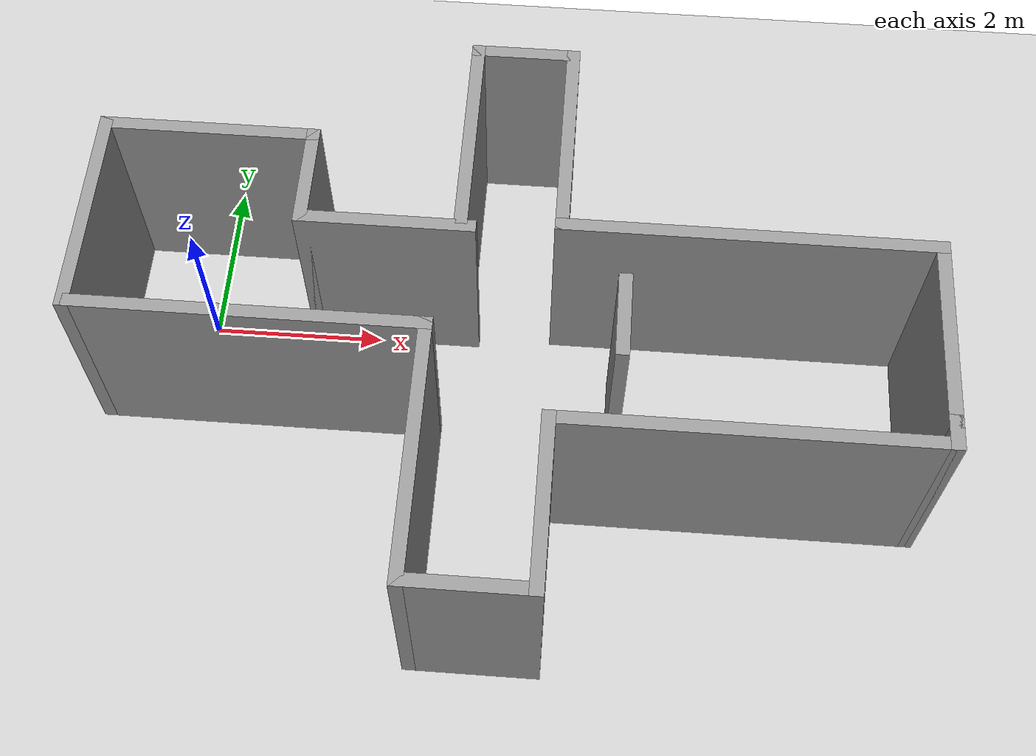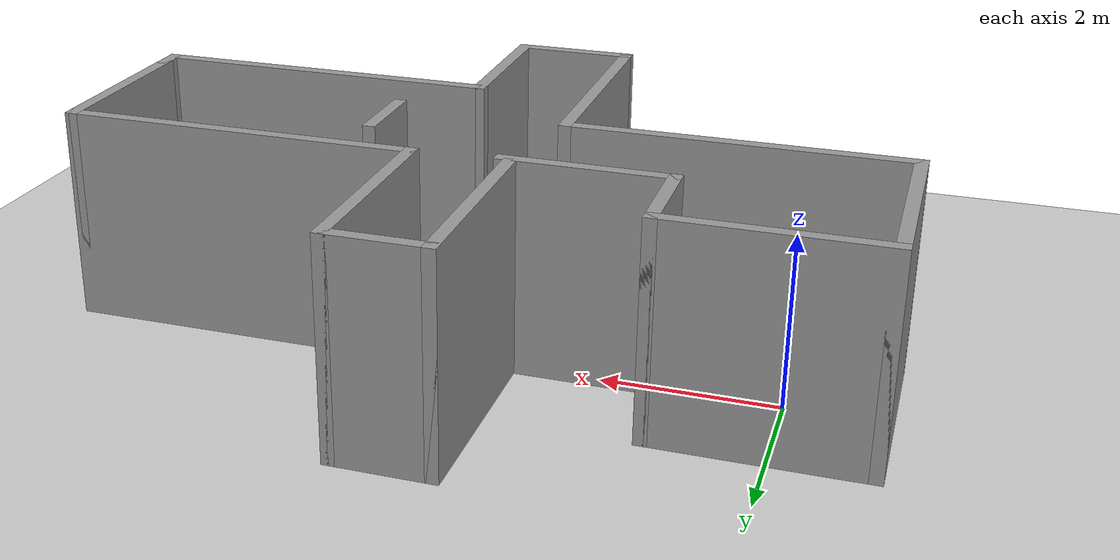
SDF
<sdf version="1.6">
 <world name="default">
  <light name="sun" type="directional">
   <pose>0 0 10 0 -0 0</pose>
   <diffuse>0.8 0.8 0.8 1</diffuse>
   <specular>0.2 0.2 0.2 1</specular>
   <attenuation>
    <range>1000</range>
    <constant>0.9</constant>
    <linear>0.01</linear>
    <quadratic>0.001</quadratic>
   </attenuation>
   <direction>-0.5 0.1 -0.9</direction>
  </light>
  <model name="ground_plane">
   <static>1</static>
   <link name="link">
    <collision name="collision">
     <geometry><plane><normal>0 0 1</normal><size>100 100</size></plane></geometry>
     <surface>
      <contact><collide_bitmask>65535</collide_bitmask></contact>
      <friction><ode><mu>100</mu><mu2>50</mu2></ode></friction>
     </surface>
    </collision>
    <visual name="visual">
     <cast_shadows>0</cast_shadows>
     <geometry><plane><normal>0 0 1</normal><size>100 100</size></plane></geometry>
     <material>
      <script><uri>file://media/materials/scripts/gazebo.material</uri><name>Gazebo/Grey</name></script>
     </material>
    </visual>
   </link>
  </model>
  <gravity>0 0 -9.8</gravity>
  <magnetic_field>6e-06 2.3e-05 -4.2e-05</magnetic_field>
  <atmosphere type="adiabatic"/>
  <physics name="default_physics" default="0" type="ode">
   <max_step_size>0.001</max_step_size>
   <real_time_factor>1</real_time_factor>
   <real_time_update_rate>1000</real_time_update_rate>
  </physics>
  <scene><ambient>0.4 0.4 0.4 1</ambient><background>0.7 0.7 0.7 1</background><shadows>1</shadows></scene>
  <audio><device>default</device></audio>
  <spherical_coordinates>
   <surface_model>EARTH_WGS84</surface_model>
   <latitude_deg>0</latitude_deg>
   <longitude_deg>0</longitude_deg>
   <elevation>0</elevation>
   <heading_deg>0</heading_deg>
  </spherical_coordinates>
  <model name="house-2">
   <pose>3.5661 -0.750878 0 0 -0 0</pose>
   <link name="Wall_29">
    <collision name="Wall_29_Collision">
     <geometry><box><size>2.5 0.15 2.5</size></box></geometry>
     <pose>0 0 1.25 0 -0 0</pose>
    </collision>
    <visual name="Wall_29_Visual">
     <pose>0 0 1.25 0 -0 0</pose>
     <geometry><box><size>2.5 0.15 2.5</size></box></geometry>
     <material>
      <script><uri>file://media/materials/scripts/gazebo.material</uri><name>Gazebo/Grey</name></script>
      <ambient>1 1 1 1</ambient>
     </material>
     <meta><layer>0</layer></meta>
    </visual>
    <pose>-0.55 2.1 0 0 -0 1.5708</pose>
   </link>
   <link name="Wall_30">
    <collision name="Wall_30_Collision">
     <geometry><box><size>1.25 0.15 2.5</size></box></geometry>
     <pose>0 0 1.25 0 -0 0</pose>
    </collision>
    <visual name="Wall_30_Visual">
     <pose>0 0 1.25 0 -0 0</pose>
     <geometry><box><size>1.25 0.15 2.5</size></box></geometry>
     <material>
      <script><uri>file://media/materials/scripts/gazebo.material</uri><name>Gazebo/Grey</name></script>
      <ambient>1 1 1 1</ambient>
     </material>
     <meta><layer>0</layer></meta>
    </visual>
    <pose>0 3.275 0 0 -0 0</pose>
   </link>
   <link name="Wall_31">
    <collision name="Wall_31_Collision">
     <geometry><box><size>2.5 0.15 2.5</size></box></geometry>
     <pose>0 0 1.25 0 -0 0</pose>
    </collision>
    <visual name="Wall_31_Visual">
     <pose>0 0 1.25 0 -0 0</pose>
     <geometry><box><size>2.5 0.15 2.5</size></box></geometry>
     <material>
      <script><uri>file://media/materials/scripts/gazebo.material</uri><name>Gazebo/Grey</name></script>
      <ambient>1 1 1 1</ambient>
     </material>
     <meta><layer>0</layer></meta>
    </visual>
    <pose>0.55 2.1 0 0 -0 -1.5708</pose>
   </link>
   <link name="Wall_32">
    <collision name="Wall_32_Collision">
     <geometry><box><size>4.25 0.15 2.5</size></box></geometry>
     <pose>0 0 1.25 0 -0 0</pose>
    </collision>
    <visual name="Wall_32_Visual">
     <pose>0 0 1.25 0 -0 0</pose>
     <geometry><box><size>4.25 0.15 2.5</size></box></geometry>
     <material>
      <script><uri>file://media/materials/scripts/gazebo.material</uri><name>Gazebo/Grey</name></script>
      <ambient>1 1 1 1</ambient>
     </material>
     <meta><layer>0</layer></meta>
    </visual>
    <pose>2.6 0.925 0 0 -0 0</pose>
   </link>
   <link name="Wall_33">
    <collision name="Wall_33_Collision">
     <geometry><box><size>2.25 0.15 2.5</size></box></geometry>
     <pose>0 0 1.25 0 -0 0</pose>
    </collision>
    <visual name="Wall_33_Visual">
     <pose>0 0 1.25 0 -0 0</pose>
     <geometry><box><size>2.25 0.15 2.5</size></box></geometry>
     <material>
      <script><uri>file://media/materials/scripts/gazebo.material</uri><name>Gazebo/Grey</name></script>
      <ambient>1 1 1 1</ambient>
     </material>
     <meta><layer>0</layer></meta>
    </visual>
    <pose>4.65 -0.125 0 0 -0 -1.5708</pose>
   </link>
   <link name="Wall_36">
    <collision name="Wall_36_Collision">
     <geometry><box><size>2 0.15 2.5</size></box></geometry>
     <pose>0 0 1.25 0 -0 0</pose>
    </collision>
    <visual name="Wall_36_Visual">
     <pose>0 0 1.25 0 -0 0</pose>
     <geometry><box><size>2 0.15 2.5</size></box></geometry>
     <material>
      <script><uri>file://media/materials/scripts/gazebo.material</uri><name>Gazebo/Grey</name></script>
      <ambient>1 1 1 1</ambient>
     </material>
     <meta><layer>0</layer></meta>
    </visual>
    <pose>0.55 -2.35 0 0 -0 -1.5708</pose>
   </link>
   <link name="Wall_37">
    <collision name="Wall_37_Collision">
     <geometry><box><size>1.5 0.15 2.5</size></box></geometry>
     <pose>0 0 1.25 0 -0 0</pose>
    </collision>
    <visual name="Wall_37_Visual">
     <pose>0 0 1.25 0 -0 0</pose>
     <geometry><box><size>1.5 0.15 2.5</size></box></geometry>
     <material>
      <script><uri>file://media/materials/scripts/gazebo.material</uri><name>Gazebo/Grey</name></script>
      <ambient>1 1 1 1</ambient>
     </material>
     <meta><layer>0</layer></meta>
    </visual>
    <pose>-0.125 -3.275 0 0 -0 3.14159</pose>
   </link>
   <link name="Wall_38">
    <collision name="Wall_38_Collision">
     <geometry><box><size>3 0.15 2.5</size></box></geometry>
     <pose>0 0 1.25 0 -0 0</pose>
    </collision>
    <visual name="Wall_38_Visual">
     <pose>0 0 1.25 0 -0 0</pose>
     <geometry><box><size>3 0.15 2.5</size></box></geometry>
     <material>
      <script><uri>file://media/materials/scripts/gazebo.material</uri><name>Gazebo/Grey</name></script>
      <ambient>1 1 1 1</ambient>
     </material>
     <meta><layer>0</layer></meta>
    </visual>
    <pose>-0.8 -1.85 0 0 -0 1.5708</pose>
   </link>
   <link name="Wall_39">
    <collision name="Wall_39_Collision">
     <geometry><box><size>4 0.15 2.5</size></box></geometry>
     <pose>0 0 1.25 0 -0 0</pose>
    </collision>
    <visual name="Wall_39_Visual">
     <pose>0 0 1.25 0 -0 0</pose>
     <geometry><box><size>4 0.15 2.5</size></box></geometry>
     <material>
      <script><uri>file://media/materials/scripts/gazebo.material</uri><name>Gazebo/Grey</name></script>
      <ambient>1 1 1 1</ambient>
     </material>
     <meta><layer>0</layer></meta>
    </visual>
    <pose>-2.725 -0.425 0 0 -0 3.14159</pose>
   </link>
   <link name="Wall_40">
    <collision name="Wall_40_Collision">
     <geometry><box><size>2.5 0.15 2.5</size></box></geometry>
     <pose>0 0 1.25 0 -0 0</pose>
    </collision>
    <visual name="Wall_40_Visual">
     <pose>0 0 1.25 0 -0 0</pose>
     <geometry><box><size>2.5 0.15 2.5</size></box></geometry>
     <material>
      <script><uri>file://media/materials/scripts/gazebo.material</uri><name>Gazebo/Grey</name></script>
      <ambient>1 1 1 1</ambient>
     </material>
     <meta><layer>0</layer></meta>
    </visual>
    <pose>-4.65 0.75 0 0 -0 1.5708</pose>
   </link>
   <link name="Wall_41">
    <collision name="Wall_41_Collision">
     <geometry><box><size>2.5 0.15 2.5</size></box></geometry>
     <pose>0 0 1.25 0 -0 0</pose>
    </collision>
    <visual name="Wall_41_Visual">
     <pose>0 0 1.25 0 -0 0</pose>
     <geometry><box><size>2.5 0.15 2.5</size></box></geometry>
     <material>
      <script><uri>file://media/materials/scripts/gazebo.material</uri><name>Gazebo/Grey</name></script>
      <ambient>1 1 1 1</ambient>
     </material>
     <meta><layer>0</layer></meta>
    </visual>
    <pose>-3.475 1.925 0 0 -0 0</pose>
   </link>
   <link name="Wall_42">
    <collision name="Wall_42_Collision">
     <geometry><box><size>1.25 0.15 2.5</size></box></geometry>
     <pose>0 0 1.25 0 -0 0</pose>
    </collision>
    <visual name="Wall_42_Visual">
     <pose>0 0 1.25 0 -0 0</pose>
     <geometry><box><size>1.25 0.15 2.5</size></box></geometry>
     <material>
      <script><uri>file://media/materials/scripts/gazebo.material</uri><name>Gazebo/Grey</name></script>
      <ambient>1 1 1 1</ambient>
     </material>
     <meta><layer>0</layer></meta>
    </visual>
    <pose>-2.3 1.375 0 0 -0 -1.5708</pose>
   </link>
   <link name="Wall_43">
    <collision name="Wall_43_Collision">
     <geometry><box><size>2 0.15 2.5</size></box></geometry>
     <pose>0 0 1.25 0 -0 0</pose>
    </collision>
    <visual name="Wall_43_Visual">
     <pose>0 0 1.25 0 -0 0</pose>
     <geometry><box><size>2 0.15 2.5</size></box></geometry>
     <material>
      <script><uri>file://media/materials/scripts/gazebo.material</uri><name>Gazebo/Grey</name></script>
      <ambient>1 1 1 1</ambient>
     </material>
     <meta><layer>0</layer></meta>
    </visual>
    <pose>-1.375 0.825 0 0 -0 0</pose>
   </link>
   <link name="Wall_47">
    <collision name="Wall_47_Collision">
     <geometry><box><size>4.25 0.15 2.5</size></box></geometry>
     <pose>0 0 1.25 0 -0 0</pose>
    </collision>
    <visual name="Wall_47_Visual">
     <pose>0 0 1.25 0 -0 0</pose>
     <geometry><box><size>4.25 0.15 2.5</size></box></geometry>
     <material>
      <script><uri>file://media/materials/scripts/gazebo.material</uri><name>Gazebo/Grey</name></script>
      <ambient>1 1 1 1</ambient>
     </material>
     <meta><layer>0</layer></meta>
    </visual>
    <pose>2.6 -1.425 0 0 -0 0</pose>
   </link>
   <link name="Wall_48">
    <collision name="Wall_48_Collision">
     <geometry><box><size>0.4 0.15 2.5</size></box></geometry>
     <pose>0 0 1.25 0 -0 0</pose>
    </collision>
    <visual name="Wall_48_Visual">
     <pose>0 0 1.25 0 -0 0</pose>
     <geometry><box><size>0.4 0.15 2.5</size></box></geometry>
     <material>
      <script><uri>file://media/materials/scripts/gazebo.material</uri><name>Gazebo/Grey</name></script>
      <ambient>1 1 1 1</ambient>
     </material>
     <meta><layer>0</layer></meta>
    </visual>
    <pose>4.65 -1.3 0 0 -0 1.5708</pose>
   </link>
   <link name="Wall_50">
    <collision name="Wall_50_Collision">
     <geometry><box><size>1 0.15 2.5</size></box></geometry>
     <pose>0 0 1.25 0 -0 0</pose>
    </collision>
    <visual name="Wall_50_Visual">
     <pose>0 0 1.25 0 -0 0</pose>
     <geometry><box><size>1 0.15 2.5</size></box></geometry>
     <material>
      <script><uri>file://media/materials/scripts/gazebo.material</uri><name>Gazebo/Grey</name></script>
      <ambient>1 1 1 1</ambient>
     </material>
     <meta><layer>0</layer></meta>
    </visual>
    <pose>1.26588 -0.158213 0 0 -0 -1.5708</pose>
   </link>
   <static>1</static>
  </model>
  <plugin filename="libcollision_map_creator.so" name="collision_map_creator"/>
 </world>
</sdf>
